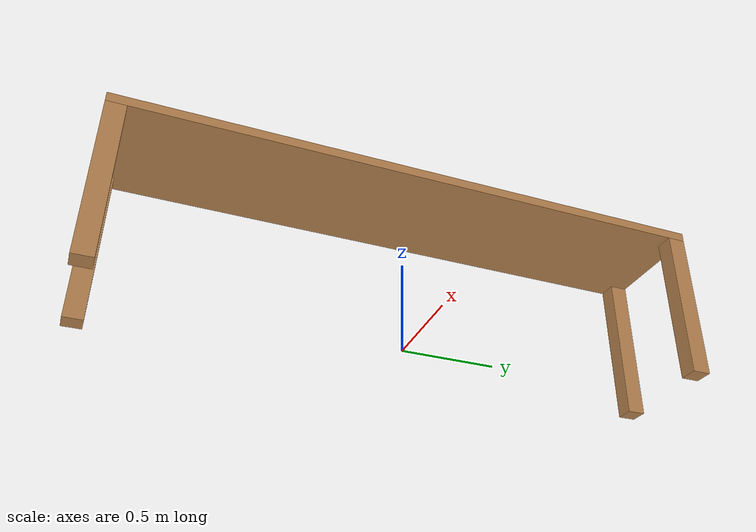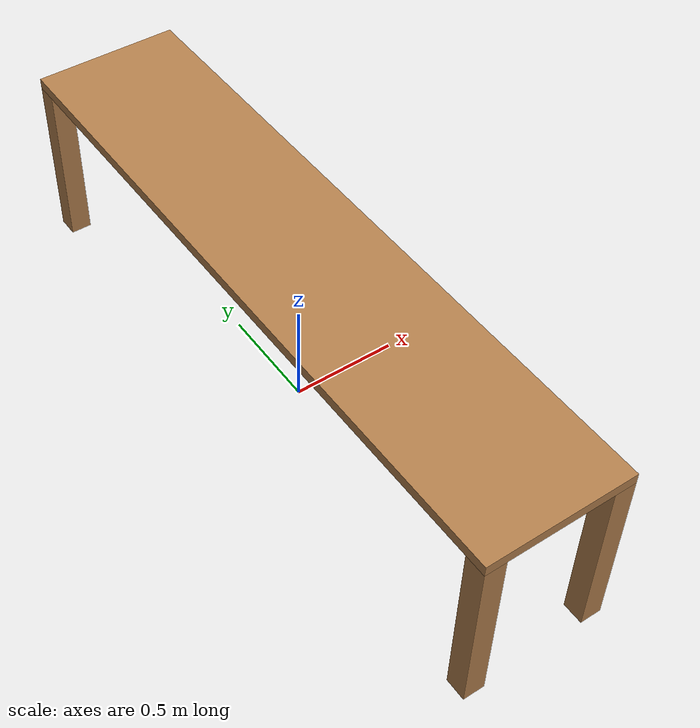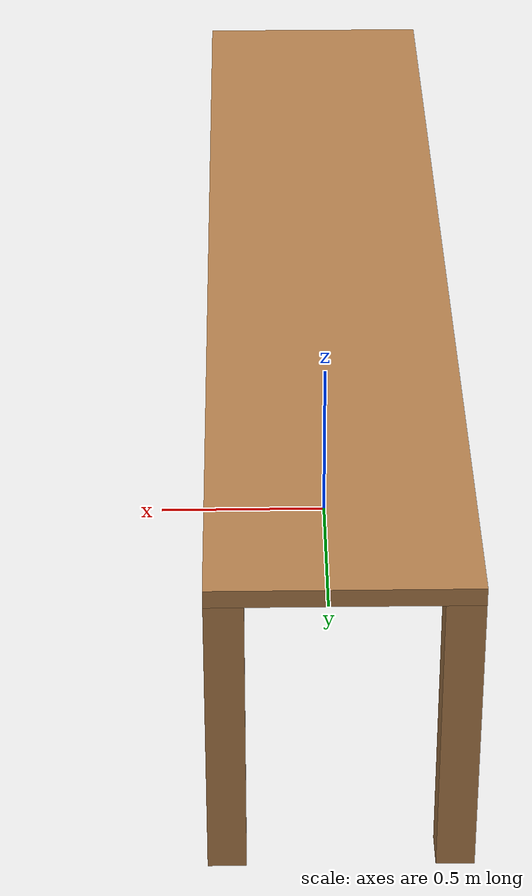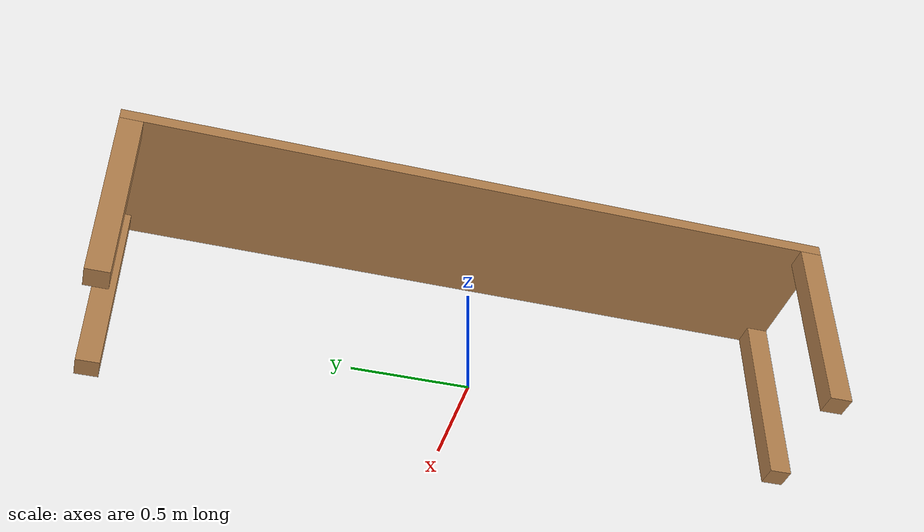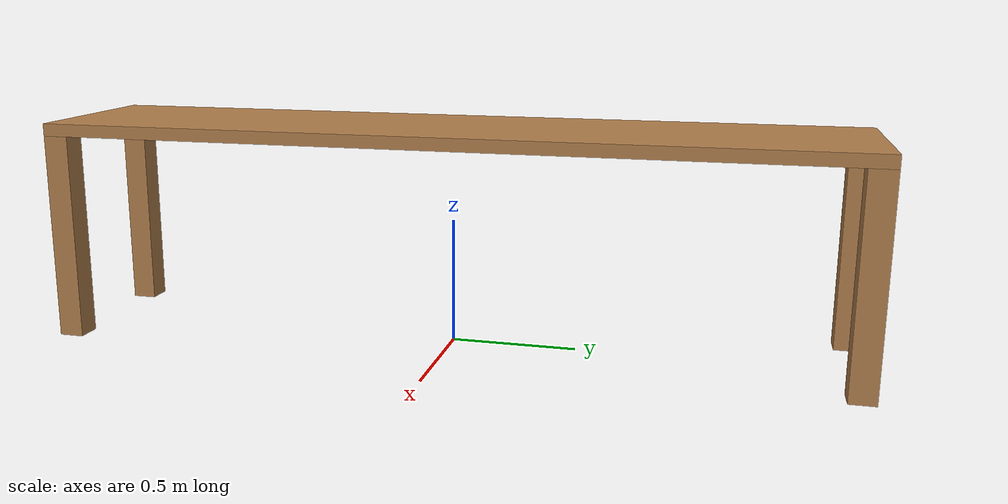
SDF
<?xml version='1.0'?>
<sdf version="1.4">
<model name="cuboid_table">
  <static>true</static>
    <link name="table_top">
      <inertial>
        <mass>500.0</mass>
        <inertia>
          <!-- http://gazebosim.org/tutorials?tut=inertia&cat=build_robot -->
          <!-- for a box: ixx = 0.083 * mass * (y*y + z*z) -->
          <ixx>425.898143173</ixx>
          <!-- for a box: ixy = 0 -->
          <ixy>0.0</ixy>
          <!-- for a box: ixz = 0 -->
          <ixz>0.0</ixz>
          <!-- for a box: iyy = 0.083 * mass * (x*x + z*z) -->
          <iyy>19.7515805932</iyy>
          <!-- for a box: iyz = 0 -->
          <iyz>0.0</iyz>
          <!-- for a box: izz = 0.083 * mass * (x*x + y*y) -->
          <izz>445.442223767</izz>
        </inertia>
      </inertial>
      <collision name="collision">
      <pose>0 0 0.855904 0 0 0</pose>
        <geometry>
          <box>
            <size>0.688071 3.203140 0.05</size>
          </box>
        </geometry>
      </collision>
      <visual name="visual">
      <pose>0 0 0.855904 0 0 0</pose>
        <geometry>
          <box>
            <size>0.688071 3.203140 0.05</size>
          </box>
        </geometry>
        <material>
          <script>
            <uri>file://media/materials/scripts/gazebo.material</uri>
            <name>Gazebo/Wood</name>
          </script>
        </material>
      </visual>
    </link>

   <link name="table_leg_1">
      <inertial>
        <mass>10.0</mass>
        <inertia>
          <!-- http://gazebosim.org/tutorials?tut=inertia&cat=build_robot -->
          <!-- for a box: ixx = 0.083 * mass * (y*y + z*z) -->
          <ixx>0.58133320948</ixx>
          <!-- for a box: ixy = 0 -->
          <ixy>0.0</ixy>
          <!-- for a box: ixz = 0 -->
          <ixz>0.0</ixz>
          <!-- for a box: iyy = 0.083 * mass * (x*x + z*z) -->
          <iyy>0.58133320948</iyy>
          <!-- for a box: iyz = 0 -->
          <iyz>0.0</iyz>
          <!-- for a box: izz = 0.083 * mass * (x*x + y*y) -->
          <izz>0.0166</izz>
        </inertia>
      </inertial>
      <collision name="collision">
      <pose>-0.2940355 -1.55157 0.415452 0 0 0</pose>
        <geometry>
          <box>
            <size>0.1 0.1 0.830904</size>
          </box>
        </geometry>
      </collision>
      <visual name="visual">
      <pose>-0.2940355 -1.55157 0.415452 0 0 0</pose>
        <geometry>
          <box>
            <size>0.1 0.1 0.830904</size>
          </box>
        </geometry>
        <material>
          <script>
            <uri>file://media/materials/scripts/gazebo.material</uri>
            <name>Gazebo/Wood</name>
          </script>
        </material>
      </visual>
    </link>

   <link name="table_leg_2">
      <inertial>
        <mass>10.0</mass>
        <inertia>
          <!-- http://gazebosim.org/tutorials?tut=inertia&cat=build_robot -->
          <!-- for a box: ixx = 0.083 * mass * (y*y + z*z) -->
          <ixx>0.58133320948</ixx>
          <!-- for a box: ixy = 0 -->
          <ixy>0.0</ixy>
          <!-- for a box: ixz = 0 -->
          <ixz>0.0</ixz>
          <!-- for a box: iyy = 0.083 * mass * (x*x + z*z) -->
          <iyy>0.58133320948</iyy>
          <!-- for a box: iyz = 0 -->
          <iyz>0.0</iyz>
          <!-- for a box: izz = 0.083 * mass * (x*x + y*y) -->
          <izz>0.0166</izz>
        </inertia>
      </inertial>
      <collision name="collision">
      <pose>0.2940355 -1.55157 0.415452 0 0 0</pose>
        <geometry>
          <box>
            <size>0.1 0.1 0.830904</size>
          </box>
        </geometry>
      </collision>
      <visual name="visual">
      <pose>0.2940355 -1.55157 0.415452 0 0 0</pose>
        <geometry>
          <box>
            <size>0.1 0.1 0.830904</size>
          </box>
        </geometry>
        <material>
          <script>
            <uri>file://media/materials/scripts/gazebo.material</uri>
            <name>Gazebo/Wood</name>
          </script>
        </material>
      </visual>
    </link>

   <link name="table_leg_3">
      <inertial>
        <mass>10.0</mass>
        <inertia>
          <!-- http://gazebosim.org/tutorials?tut=inertia&cat=build_robot -->
          <!-- for a box: ixx = 0.083 * mass * (y*y + z*z) -->
          <ixx>0.58133320948</ixx>
          <!-- for a box: ixy = 0 -->
          <ixy>0.0</ixy>
          <!-- for a box: ixz = 0 -->
          <ixz>0.0</ixz>
          <!-- for a box: iyy = 0.083 * mass * (x*x + z*z) -->
          <iyy>0.58133320948</iyy>
          <!-- for a box: iyz = 0 -->
          <iyz>0.0</iyz>
          <!-- for a box: izz = 0.083 * mass * (x*x + y*y) -->
          <izz>0.0166</izz>
        </inertia>
      </inertial>
      <collision name="collision">
      <pose>-0.2940355 1.55157 0.415452 0 0 0</pose>
        <geometry>
          <box>
            <size>0.1 0.1 0.830904</size>
          </box>
        </geometry>
      </collision>
      <visual name="visual">
      <pose>-0.2940355 1.55157 0.415452 0 0 0</pose>
        <geometry>
          <box>
            <size>0.1 0.1 0.830904</size>
          </box>
        </geometry>
        <material>
          <script>
            <uri>file://media/materials/scripts/gazebo.material</uri>
            <name>Gazebo/Wood</name>
          </script>
        </material>
      </visual>
    </link>

   <link name="table_leg_4">
      <inertial>
        <mass>10.0</mass>
        <inertia>
          <!-- http://gazebosim.org/tutorials?tut=inertia&cat=build_robot -->
          <!-- for a box: ixx = 0.083 * mass * (y*y + z*z) -->
          <ixx>0.58133320948</ixx>
          <!-- for a box: ixy = 0 -->
          <ixy>0.0</ixy>
          <!-- for a box: ixz = 0 -->
          <ixz>0.0</ixz>
          <!-- for a box: iyy = 0.083 * mass * (x*x + z*z) -->
          <iyy>0.58133320948</iyy>
          <!-- for a box: iyz = 0 -->
          <iyz>0.0</iyz>
          <!-- for a box: izz = 0.083 * mass * (x*x + y*y) -->
          <izz>0.0166</izz>
        </inertia>
      </inertial>
      <collision name="collision">
      <pose>0.2940355 1.55157 0.415452 0 0 0</pose>
        <geometry>
          <box>
            <size>0.1 0.1 0.830904</size>
          </box>
        </geometry>
      </collision>
      <visual name="visual">
      <pose>0.2940355 1.55157 0.415452 0 0 0</pose>
        <geometry>
          <box>
            <size>0.1 0.1 0.830904</size>
          </box>
        </geometry>
        <material>
          <script>
            <uri>file://media/materials/scripts/gazebo.material</uri>
            <name>Gazebo/Wood</name>
          </script>
        </material>
      </visual>
    </link>
  </model>
</sdf>
